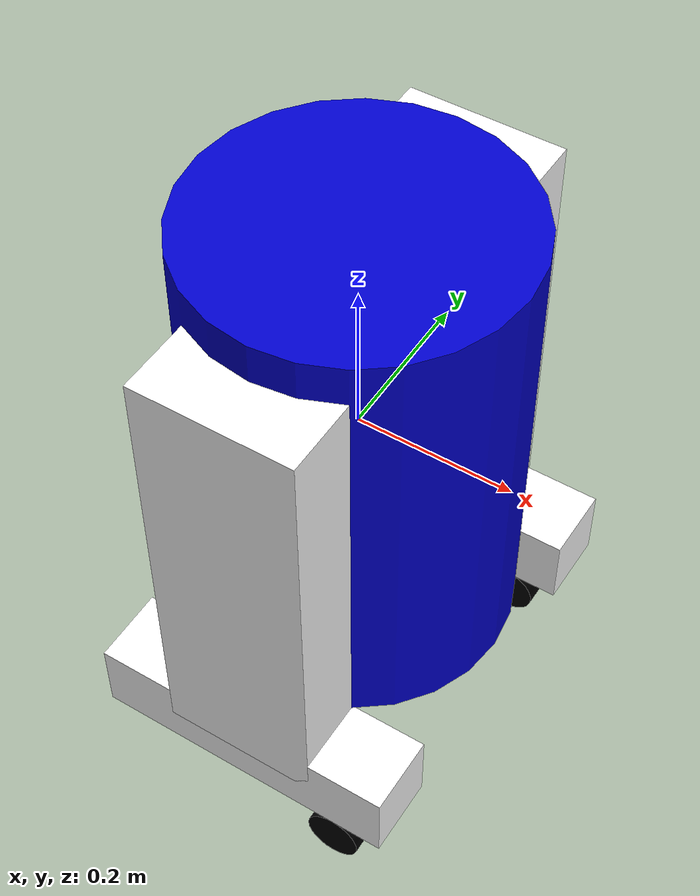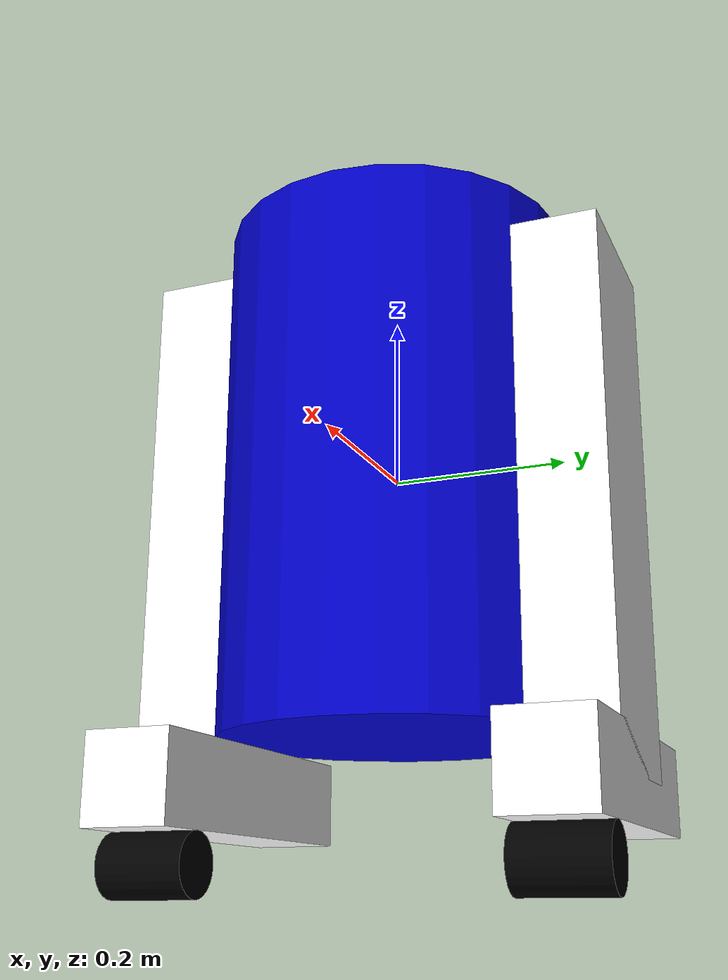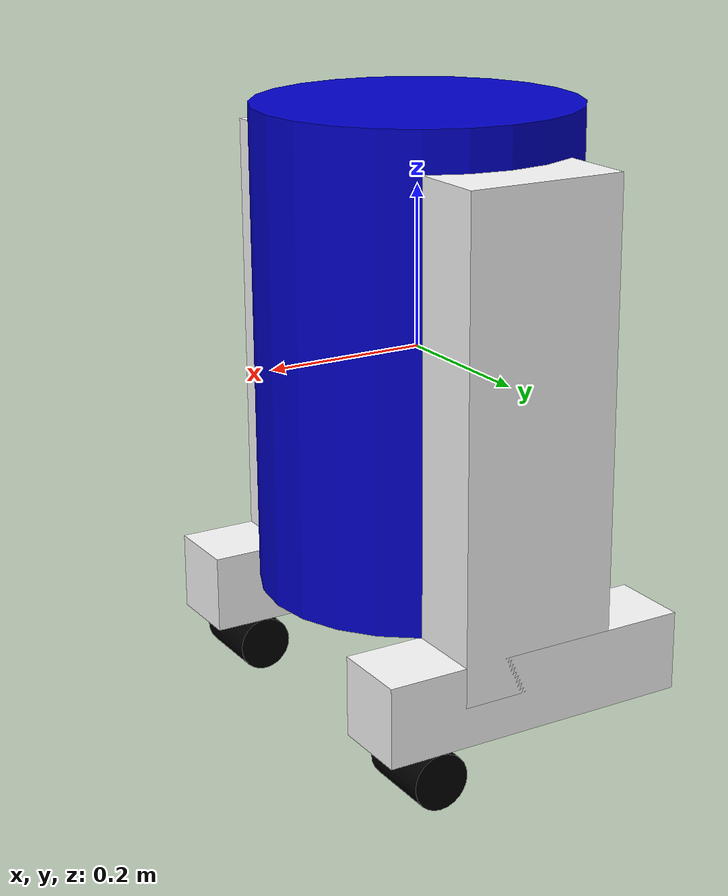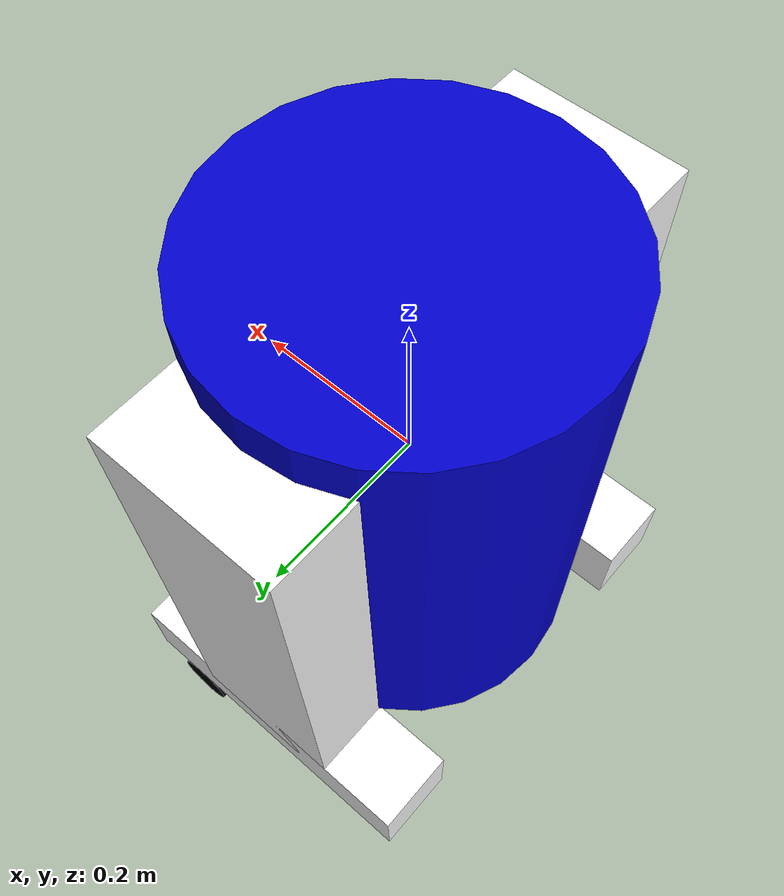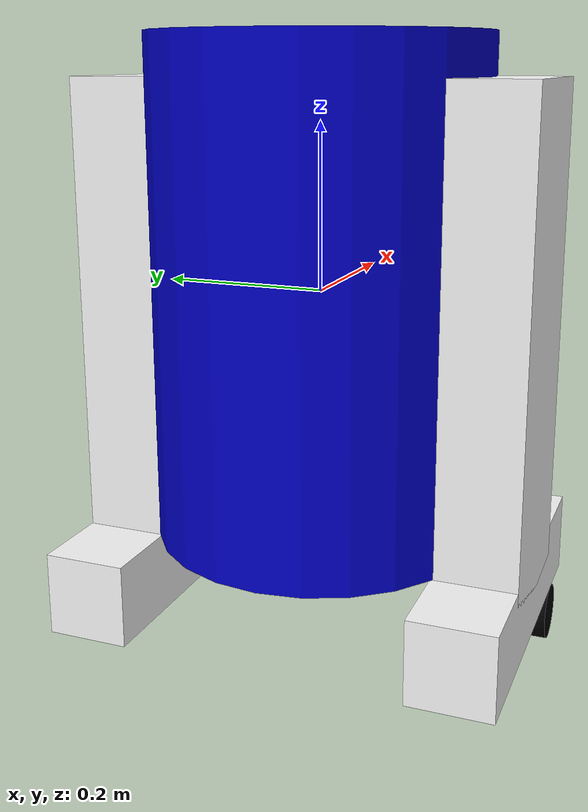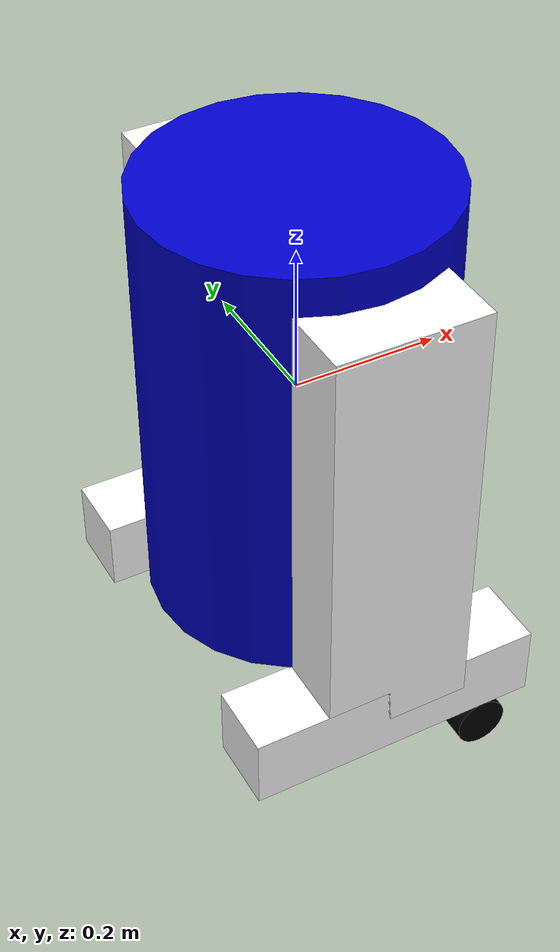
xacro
<?xml version="1.0"?>
<robot name="macroed" xmlns:xacro="http://ros.org/wiki/xacro">

  <xacro:property name="width" value="0.2" />
  <xacro:property name="leglen" value="0.6" />
  <xacro:property name="bodylen" value="0.6" />
  <xacro:property name="baselen" value="0.4" />

  <material name="blue">
    <color rgba="0 0 0.8 1"/>
  </material>

  <material name="black">
    <color rgba="0 0 0 1"/>
  </material>

  <material name="white">
    <color rgba="1 1 1 1"/>
  </material>

  <xacro:macro name="default_inertial" params="mass">
    <inertial>
      <mass value="${mass}" />
      <inertia ixx="1.0" ixy="0.0" ixz="0.0" iyy="1.0" iyz="0.0" izz="1.0" />
    </inertial>
  </xacro:macro>

  <xacro:macro name="default_wheel" params="name parent">
    <link name="${name}">
      <visual>
        <origin rpy="1.57075 0 0" xyz="0 0 0"/>
        <geometry>
          <cylinder length="0.1" radius="0.035"/>
        </geometry>
        <material name="black"/>
      </visual>
    </link>
    <joint name="${name}_joint" type="continuous">
      <parent link="${parent}"/>
      <child link="${name}"/>
      <origin rpy="0 0 0" xyz="0.133333333333 0 -0.085"/>
    </joint>
  </xacro:macro>

  <xacro:macro name="default_leg" params="legname parent jointname xyz">
    <link name="${legname}">
    <visual>
      <geometry>
        <box size="0.6 0.1 0.2"/>
      </geometry>
      <origin rpy="0 1.57075 0" xyz="0 0 -0.3"/>
      <material name="white"/>
    </visual>
    </link>

    <joint name="${jointname}" type="fixed">
      <parent link="${parent}"/>
      <child link="${legname}"/>
      <origin xyz="${xyz}"/>
    </joint>
  </xacro:macro>

  <link name="base_link">
    <visual>
      <geometry>
        <cylinder radius="${width}" length="${bodylen}"/>
      </geometry>
      <material name="blue"/>
    </visual>
    <collision>
        <geometry>
          <cylinder radius="${width}" length="${bodylen}"/>
        </geometry>
    </collision>
    <xacro:default_inertial mass="10"/>
  </link>

  <xacro:default_leg legname="right_leg" parent="base_link" jointname="base_to_right_leg" xyz="0 -0.22 0.25"/>

  <link name="right_base">
    <visual>
      <geometry>
        <box size="0.4 0.1 0.1"/>
      </geometry>
      <material name="white"/>
    </visual>
  </link>

  <joint name="right_base_joint" type="fixed">
    <parent link="right_leg"/>
    <child link="right_base"/>
    <origin xyz="0 0 -0.6"/>
  </joint>

  <xacro:default_wheel name="right_front_wheel" parent="right_base"/>
  <xacro:default_wheel name="right_back_wheel" parent="right_base"/>

  <xacro:default_leg legname="left_leg" parent="base_link" jointname="base_to_left_leg" xyz="0 0.22 0.25"/>

  <link name="left_base">
    <visual>
      <geometry>
        <box size="0.4 0.1 0.1"/>
      </geometry>
      <material name="white"/>
    </visual>
  </link>

  <joint name="left_base_joint" type="fixed">
    <parent link="left_leg"/>
    <child link="left_base"/>
    <origin xyz="0 0 -0.6"/>
  </joint>

  <xacro:default_wheel name="left_front_wheel" parent="left_base"/>
  <xacro:default_wheel name="left_back_wheel" parent="left_base"/>

</robot>
